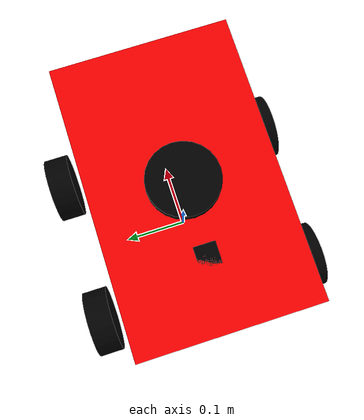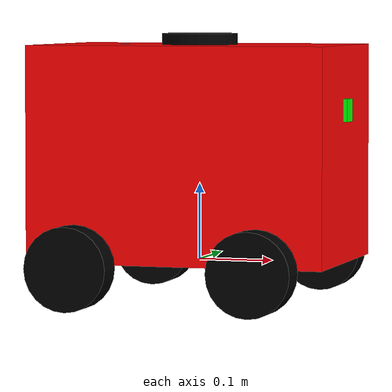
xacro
<?xml version="1.0"?>
<robot xmlns:xacro="https://www.ros.org/wiki/xacro" name="my_robot">

    <xacro:include filename="robot_body.xacro"/>
    <xacro:include filename="lidar.xacro"/>
    <xacro:include filename="camera.xacro"/>
    <xacro:include filename="imu.xacro"/>

    <xacro:include filename="ros2_control.xacro"/>

</robot>

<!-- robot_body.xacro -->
<robot xmlns:xacro="https://www.ros.org/wiki/xacro">

    <xacro:include filename="inertial_macros.xacro"/>

    <!-- MATERIALS-->

    <material name="red">
        <color rgba="1 0.0 0.0 1.0"/>
    </material>

    <material name="black">
        <color rgba="0.0 0.0 0.0 1.0"/>
    </material>

    <material name="green">
        <color rgba="0.0 1 0.0 1.0"/>
    </material>

    <!-- LINKS-->

    <link name="base_link"></link>

    <link name="base_footprint"></link>

    <link name="chassis">
        <visual>
            <geometry>
                <box size="0.4 0.25 0.285"/>
            </geometry>
            <origin xyz="0.2 0.0 0.1425" rpy="0.0 0.0 0.0"/>
            <material name="red"/>
        </visual>
        <collision>
            <geometry>
                <box size="0.4 0.25 0.285"/>
            </geometry>
            <origin xyz="0.2 0.0 0.1425" rpy="0.0 0.0 0.0"/>
        </collision>
        <xacro:inertial_box mass="0.5" x="0.4" y="0.25" z="0.285">
            <origin xyz="0.2 0.0 0.1425" rpy="0.0 0.0 0.0"/>
        </xacro:inertial_box>
    </link>
    <gazebo reference="chassis">
        <material>
            Gazebo/Red
        </material>
    </gazebo>

    <link name="left_wheel">
        <visual>
            <geometry>
                <cylinder radius="0.055" length="0.04"/>
            </geometry>
            <material name="black"/>
        </visual>
        <collision>
            <geometry>
                <sphere radius="0.055"/>
            </geometry>
            <material name="black"/>
        </collision>
        <xacro:inertial_cylinder mass="0.1" length="0.04" radius="0.055">
            <origin xyz="0.0 0.0 0.0" rpy="0.0 0.0 0.0"/>
        </xacro:inertial_cylinder>
    </link>
    <gazebo reference="left_wheel">
        <material>
            Gazebo/Black
        </material>
    </gazebo>

    <link name="right_wheel">
        <visual>
            <geometry>
                <cylinder radius="0.055" length="0.04"/>
            </geometry>
            <material name="black"/>
        </visual>
        <collision>
            <geometry>
                <sphere radius="0.055"/>
            </geometry>
            <material name="black"/>
        </collision>
        <xacro:inertial_cylinder mass="0.1" length="0.04" radius="0.055">
            <origin xyz="0.0 0.0 0.0" rpy="0.0 0.0 0.0"/>
        </xacro:inertial_cylinder>
    </link>
    <gazebo reference="right_wheel">
        <material>
            Gazebo/Black
        </material>
    </gazebo>

    <link name="back_left_wheel">
        <visual>
            <geometry>
                <cylinder radius="0.055" length="0.04"/>
            </geometry>
            <material name="black"/>
        </visual>
        <collision>
            <geometry>
                <sphere radius="0.055"/>
            </geometry>
            <material name="black"/>
        </collision>
        <xacro:inertial_cylinder mass="0.1" length="0.04" radius="0.055">
            <origin xyz="0.0 0.0 0.0" rpy="0.0 0.0 0.0"/>
        </xacro:inertial_cylinder>
    </link>
    <gazebo reference="back_left_wheel">
        <material>
            Gazebo/Black
        </material>
    </gazebo>

    <link name="back_right_wheel">
        <visual>
            <geometry>
                <cylinder radius="0.055" length="0.04"/>
            </geometry>
            <material name="black"/>
        </visual>
        <collision>
            <geometry>
                <sphere radius="0.055"/>
            </geometry>
            <material name="black"/>
        </collision>
        <xacro:inertial_cylinder mass="0.1" length="0.04" radius="0.055">
            <origin xyz="0.0 0.0 0.0" rpy="0.0 0.0 0.0"/>
        </xacro:inertial_cylinder>
    </link>
    <gazebo reference="back_right_wheel">
        <material>
            Gazebo/Black
        </material>
    </gazebo>

    <!-- JOINTS-->

    <joint name="base_footprint_joint" type="fixed">
        <parent link="base_link"/>
        <child link="base_footprint"/>
        <origin xyz="0.0 0.0 0.0" rpy="0.0 0.0 0.0"/>
    </joint>

    <joint name="chassis_joint" type="fixed">
        <parent link="base_link"/>
        <child link="chassis"/>
        <origin xyz="-0.2 0.0 0.0" rpy="0.0 0.0 0.0"/>
    </joint>

    <joint name="left_wheel_joint" type="continuous">
        <parent link="chassis"/>
        <child link="left_wheel"/>
        <axis xyz="0.0 0.0 1"/>
        <origin xyz="0.323 0.18 0.0" rpy="-${pi/2} 0.0 0.0"/>
    </joint>

    <joint name="right_wheel_joint" type="continuous">
        <parent link="chassis"/>
        <child link="right_wheel"/>
        <axis xyz="0.0 0.0 1"/>
        <origin xyz="0.323 -0.18 0.0" rpy="-${pi/2} 0.0 0.0"/>
    </joint>

    <joint name="back_left_wheel_joint" type="continuous">
        <parent link="chassis"/>
        <child link="back_left_wheel"/>
        <axis xyz="0.0 0.0 1"/>
        <origin xyz="0.08 0.18 0.0" rpy="-${pi/2} 0.0 0.0"/>
    </joint>

    <joint name="back_right_wheel_joint" type="continuous">
        <parent link="chassis"/>
        <child link="back_right_wheel"/>
        <axis xyz="0.0 0.0 1"/>
        <origin xyz="0.08 -0.18 0.0" rpy="-${pi/2} 0.0 0.0"/>
    </joint>

</robot>

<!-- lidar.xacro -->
<robot xmlns:xacro="http://www.ros.org/wiki/xacro">

    <link name="laser">
        <visual>
            <geometry>
                <cylinder radius="0.05" length="0.04"/>
            </geometry>
            <material name="black"/>
        </visual>
        <collision>
            <geometry>
                <cylinder radius="0.05" length="0.04"/>
            </geometry>
        </collision>
        <xacro:inertial_cylinder mass="0.1" length="0.04" radius="0.05">
            <origin xyz="0 0 0" rpy="0 0 0"/>
        </xacro:inertial_cylinder>
    </link>

    <joint name="laser_joint" type="fixed">
        <parent link="chassis"/>
        <child link="laser"/>
        <origin xyz="0.2 0 0.28" rpy="0 0 0"/>
    </joint>

    <!-- =============== Gazebo =============== -->
    <gazebo>
      <plugin filename="gz-sim-sensors-system" name="gz::sim::systems::Sensors">
        <render_engine>ogre2</render_engine>
      </plugin>
    </gazebo>

    <gazebo reference="laser" >
      <sensor name="laser" type="gpu_lidar">
        <gz_frame_id>laser</gz_frame_id>
        <topic>scan</topic>
        <update_rate>50</update_rate>
        <lidar>
          <scan>
            <horizontal>
              <samples>2800</samples>
              <resolution>1</resolution>
              <min_angle>-3.14</min_angle>
              <max_angle>3.14</max_angle>
            </horizontal>
            <vertical>
              <samples>1</samples>
              <resolution>0.1</resolution>
              <min_angle>0.0</min_angle>
              <max_angle>0.0</max_angle>
            </vertical>
          </scan>
          <range>
            <min>0.2</min>
            <max>30.0</max>
            <resolution>0.01</resolution>
          </range>
          <frame_id>/lidar_head_link</frame_id>
        </lidar>
        <alwaysOn>ture</alwaysOn>
        <visualize>true</visualize>
      </sensor>
    </gazebo>

</robot>

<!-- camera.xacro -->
<robot xmlns:xacro="http://www.ros.org/wiki/xacro">

    <!-- Define the camera link -->
    <link name="camera_link">
        <visual>
            <geometry>
                <box size="0.010 0.03 0.03"/>
            </geometry>
            <material name="green"/>
        </visual>
    </link>

    <link name="camera_link_optical"/>

    <joint name="camera_joint" type="fixed">
        <parent link="chassis"/>
        <child link="camera_link"/>
        <origin xyz="0.4 0 0.2" rpy="0 0 0"/>
    </joint>

    <joint name="camera_optical_joint" type="fixed">
        <parent link="camera_link"/>
        <child link="camera_link_optical"/>
        <origin xyz="0 0 0" rpy="${-pi/2} 0 ${-pi/2}"/>
    </joint>

    <gazebo reference="camera_link">
        <plugin filename="gz-sim-camera-system" name="gz::sim::systems::Camera">
        </plugin>
        <sensor name="camera" type="camera">
            <pose>0 0 0 0 0 0</pose>
            <update_rate>10</update_rate>
            <camera>
                <horizontal_fov>1.089</horizontal_fov>
                <image>
                    <format>R8G8B8</format>
                    <width>640</width>
                    <height>480</height>
                </image>
                <clip>
                    <near>0.05</near>
                    <far>8.0</far>
                </clip>
            </camera>
            <visualize>true</visualize>
            <topic>camera/image_raw</topic>
        </sensor>
    </gazebo>

</robot>

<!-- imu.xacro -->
<robot xmlns:xacro="http://www.ros.org/wiki/xacro">

    <link name="imu_link">
        <visual>
            <geometry>
                <box size="0.03 0.03 0.01"/>
            </geometry>
            <material name="black"/>
        </visual>
        <collision>
            <geometry>
                <box size="0.03 0.03 0.01"/>
            </geometry>
        </collision>
    </link>

    <joint name="imu_joint" type="fixed">
        <parent link="chassis"/>
        <child link="imu_link"/>
        <origin xyz="0.1 0 0.28" rpy="0 0 0"/>
    </joint>

    <gazebo>
        <plugin filename="gz-sim-imu-system"
            name="gz::sim::systems::Imu">
        </plugin>
    </gazebo>

    <gazebo reference="imu_link">
        <sensor name="imu_link" type="imu">
            <gz_frame_id>imu_link</gz_frame_id>
            <always_on>1</always_on>
            <update_rate>30</update_rate>
            <visualize>true</visualize>
            <topic>imu</topic>
        </sensor>
    </gazebo>
</robot>
